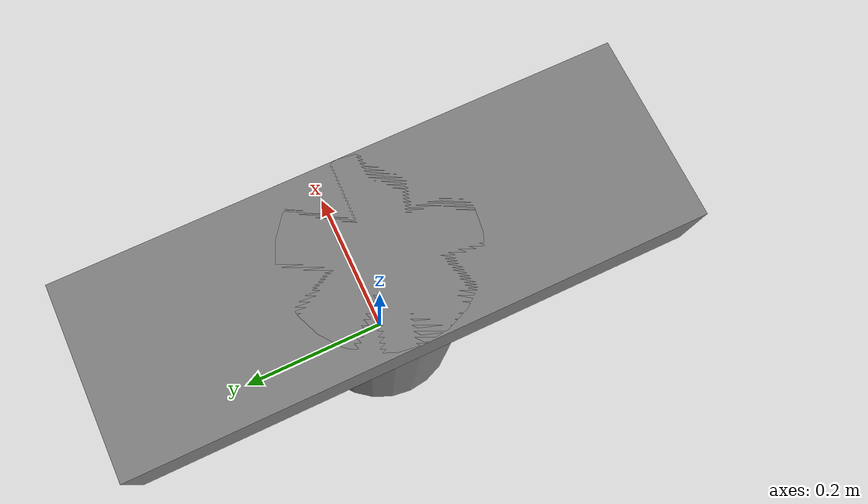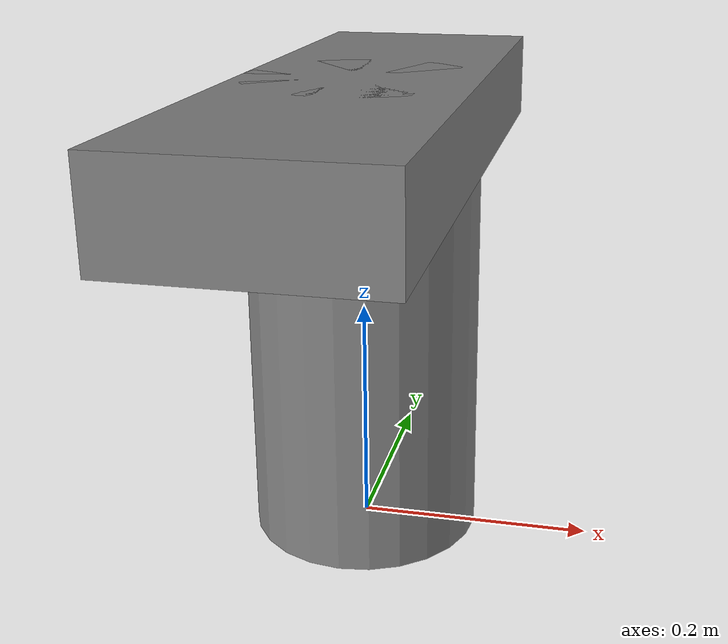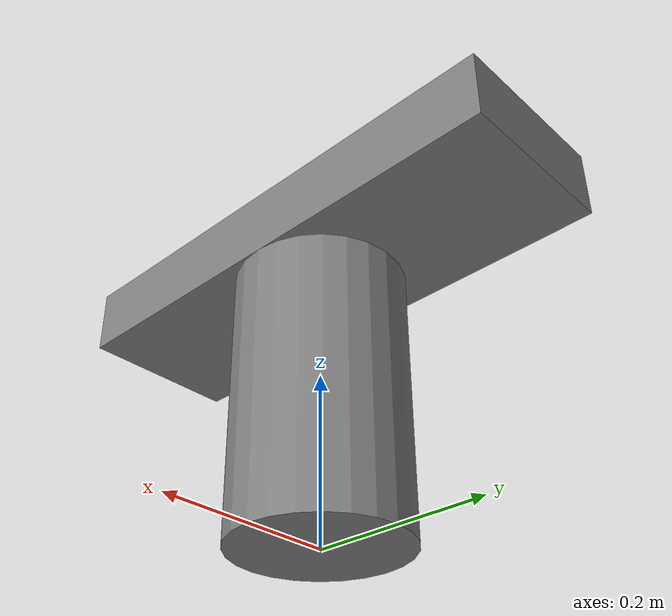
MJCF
<mujoco>
    <asset>
    </asset>
    <worldbody>
        <body name="Base" pos="0 0 0">
            <geom name='shoulders' type='box' size='.1 .3 .04' pos="0 0 .36"/>
            <geom name='legs' type='cylinder' size='.1 .2' pos="0 0 .2"/>
            <body name="0_mount_base_link" pos="0.0 0.15 .4"/>
            <body name="1_mount_base_link" pos="0.0 -0.15 .4"/>
        </body>
    </worldbody>
</mujoco>
